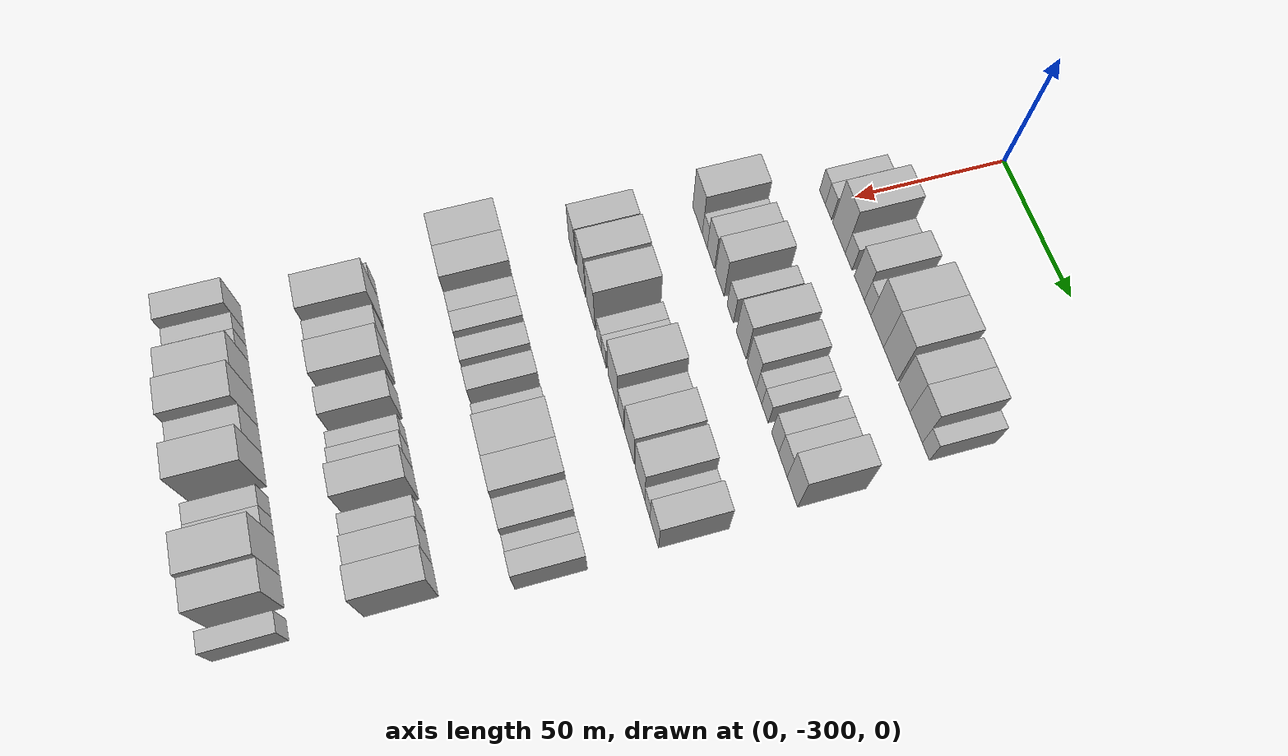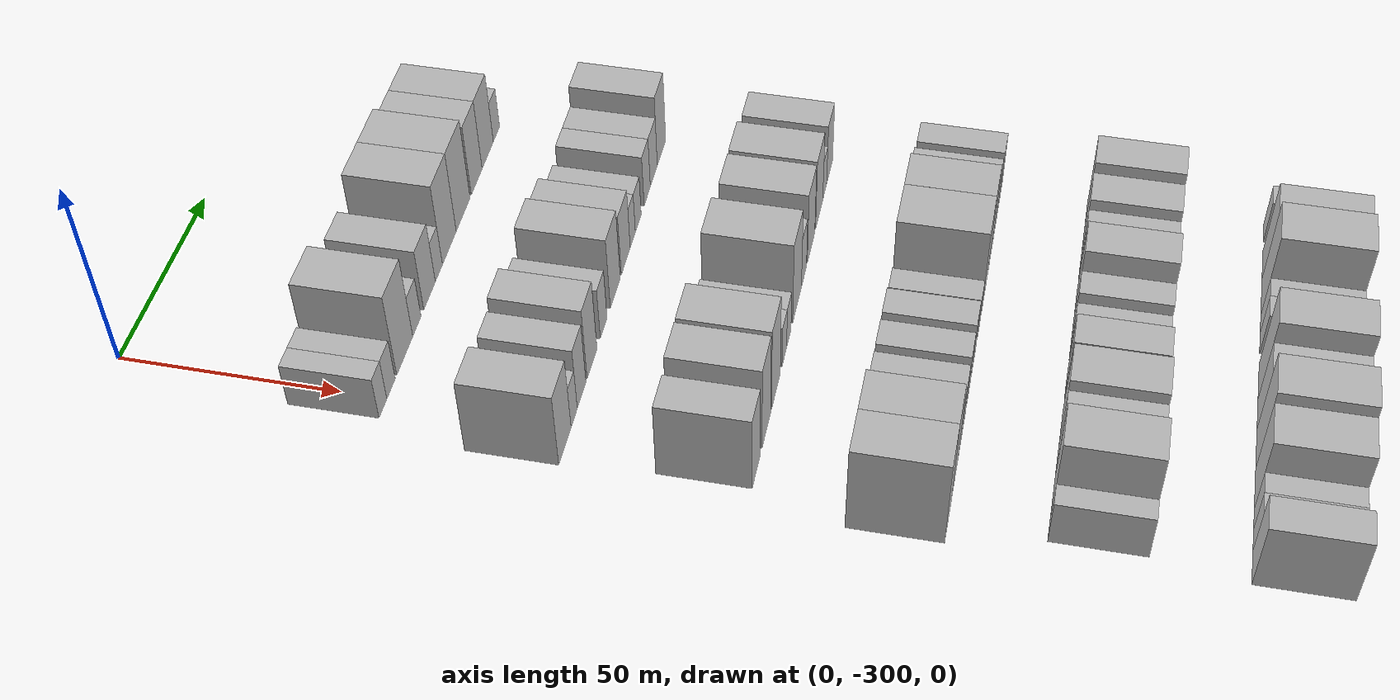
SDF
<sdf version="1.6">
 <world name="default">
  <model name="building_38">
   <static>1</static>
   <pose>50.0000 -302.6083 0 0.000000 0.000000 0.000000</pose>
   <link name="link">
    <pose>0 0 6.00 0 0 0</pose>
    <collision name="collision"><geometry><box><size>20.0000 5.3169 12.0000</size></box></geometry></collision>
    <visual name="visual">
     <cast_shadows>0</cast_shadows>
     <geometry><box><size>20.0000 5.3169 12.0000</size></box></geometry>
     <material>
      <script>
       <uri>model://HANNAS_wall/materials/scripts</uri>
       <uri>model://HANNAS_wall/materials/textures</uri>
       <name>vrc/HANNAS_wall</name>
      </script>
     </material>
    </visual>
   </link>
  </model>
  <model name="building_39">
   <static>1</static>
   <pose>50.0000 -297.0786 0 0.000000 0.000000 0.000000</pose>
   <link name="link">
    <pose>0 0 6.00 0 0 0</pose>
    <collision name="collision"><geometry><box><size>20.0000 5.7423 12.0000</size></box></geometry></collision>
    <visual name="visual">
     <cast_shadows>0</cast_shadows>
     <geometry><box><size>20.0000 5.7423 12.0000</size></box></geometry>
     <material>
      <script>
       <uri>model://HANNAS_wall/materials/scripts</uri>
       <uri>model://HANNAS_wall/materials/textures</uri>
       <name>vrc/HANNAS_wall</name>
      </script>
     </material>
    </visual>
   </link>
  </model>
  <model name="building_40">
   <static>1</static>
   <pose>50.0000 -287.5664 0 0.000000 0.000000 0.000000</pose>
   <link name="link">
    <pose>0 0 12.00 0 0 0</pose>
    <collision name="collision"><geometry><box><size>20.0000 11.2821 24.0000</size></box></geometry></collision>
    <visual name="visual">
     <cast_shadows>0</cast_shadows>
     <geometry><box><size>20.0000 11.2821 24.0000</size></box></geometry>
     <material>
      <script>
       <uri>model://HANNAS_wall/materials/scripts</uri>
       <uri>model://HANNAS_wall/materials/textures</uri>
       <name>vrc/HANNAS_wall</name>
      </script>
     </material>
    </visual>
   </link>
  </model>
  <model name="building_41">
   <static>1</static>
   <pose>50.0000 -278.9384 0 0.000000 0.000000 0.000000</pose>
   <link name="link">
    <pose>0 0 6.00 0 0 0</pose>
    <collision name="collision"><geometry><box><size>20.0000 5.9738 12.0000</size></box></geometry></collision>
    <visual name="visual">
     <cast_shadows>0</cast_shadows>
     <geometry><box><size>20.0000 5.9738 12.0000</size></box></geometry>
     <material>
      <script>
       <uri>model://HANNAS_wall/materials/scripts</uri>
       <uri>model://HANNAS_wall/materials/textures</uri>
       <name>vrc/HANNAS_wall</name>
      </script>
     </material>
    </visual>
   </link>
  </model>
  <model name="building_42">
   <static>1</static>
   <pose>50.0000 -269.6416 0 0.000000 0.000000 0.000000</pose>
   <link name="link">
    <pose>0 0 9.00 0 0 0</pose>
    <collision name="collision"><geometry><box><size>20.0000 8.6198 18.0000</size></box></geometry></collision>
    <visual name="visual">
     <cast_shadows>0</cast_shadows>
     <geometry><box><size>20.0000 8.6198 18.0000</size></box></geometry>
     <material>
      <script>
       <uri>model://HANNAS_wall/materials/scripts</uri>
       <uri>model://HANNAS_wall/materials/textures</uri>
       <name>vrc/HANNAS_wall</name>
      </script>
     </material>
    </visual>
   </link>
  </model>
  <model name="building_43">
   <static>1</static>
   <pose>50.0000 -262.6278 0 0.000000 0.000000 0.000000</pose>
   <link name="link">
    <pose>0 0 6.00 0 0 0</pose>
    <collision name="collision"><geometry><box><size>20.0000 5.4079 12.0000</size></box></geometry></collision>
    <visual name="visual">
     <cast_shadows>0</cast_shadows>
     <geometry><box><size>20.0000 5.4079 12.0000</size></box></geometry>
     <material>
      <script>
       <uri>model://HANNAS_wall/materials/scripts</uri>
       <uri>model://HANNAS_wall/materials/textures</uri>
       <name>vrc/HANNAS_wall</name>
      </script>
     </material>
    </visual>
   </link>
  </model>
  <model name="building_44">
   <static>1</static>
   <pose>50.0000 -254.5875 0 0.000000 0.000000 0.000000</pose>
   <link name="link">
    <pose>0 0 12.00 0 0 0</pose>
    <collision name="collision"><geometry><box><size>20.0000 10.6726 24.0000</size></box></geometry></collision>
    <visual name="visual">
     <cast_shadows>0</cast_shadows>
     <geometry><box><size>20.0000 10.6726 24.0000</size></box></geometry>
     <material>
      <script>
       <uri>model://HANNAS_wall/materials/scripts</uri>
       <uri>model://HANNAS_wall/materials/textures</uri>
       <name>vrc/HANNAS_wall</name>
      </script>
     </material>
    </visual>
   </link>
  </model>
  <model name="building_45">
   <static>1</static>
   <pose>50.0000 -243.7102 0 0.000000 0.000000 0.000000</pose>
   <link name="link">
    <pose>0 0 12.00 0 0 0</pose>
    <collision name="collision"><geometry><box><size>20.0000 11.0819 24.0000</size></box></geometry></collision>
    <visual name="visual">
     <cast_shadows>0</cast_shadows>
     <geometry><box><size>20.0000 11.0819 24.0000</size></box></geometry>
     <material>
      <script>
       <uri>model://HANNAS_wall/materials/scripts</uri>
       <uri>model://HANNAS_wall/materials/textures</uri>
       <name>vrc/HANNAS_wall</name>
      </script>
     </material>
    </visual>
   </link>
  </model>
  <model name="building_46">
   <static>1</static>
   <pose>50.0000 -232.6948 0 0.000000 0.000000 0.000000</pose>
   <link name="link">
    <pose>0 0 10.50 0 0 0</pose>
    <collision name="collision"><geometry><box><size>20.0000 8.9489 21.0000</size></box></geometry></collision>
    <visual name="visual">
     <cast_shadows>0</cast_shadows>
     <geometry><box><size>20.0000 8.9489 21.0000</size></box></geometry>
     <material>
      <script>
       <uri>model://HANNAS_wall/materials/scripts</uri>
       <uri>model://HANNAS_wall/materials/textures</uri>
       <name>vrc/HANNAS_wall</name>
      </script>
     </material>
    </visual>
   </link>
  </model>
  <model name="building_47">
   <static>1</static>
   <pose>50.0000 -223.4624 0 0.000000 0.000000 0.000000</pose>
   <link name="link">
    <pose>0 0 10.50 0 0 0</pose>
    <collision name="collision"><geometry><box><size>20.0000 9.5160 21.0000</size></box></geometry></collision>
    <visual name="visual">
     <cast_shadows>0</cast_shadows>
     <geometry><box><size>20.0000 9.5160 21.0000</size></box></geometry>
     <material>
      <script>
       <uri>model://HANNAS_wall/materials/scripts</uri>
       <uri>model://HANNAS_wall/materials/textures</uri>
       <name>vrc/HANNAS_wall</name>
      </script>
     </material>
    </visual>
   </link>
  </model>
  <model name="building_48">
   <static>1</static>
   <pose>50.0000 -216.0085 0 0.000000 0.000000 0.000000</pose>
   <link name="link">
    <pose>0 0 6.00 0 0 0</pose>
    <collision name="collision"><geometry><box><size>20.0000 5.3917 12.0000</size></box></geometry></collision>
    <visual name="visual">
     <cast_shadows>0</cast_shadows>
     <geometry><box><size>20.0000 5.3917 12.0000</size></box></geometry>
     <material>
      <script>
       <uri>model://HANNAS_wall/materials/scripts</uri>
       <uri>model://HANNAS_wall/materials/textures</uri>
       <name>vrc/HANNAS_wall</name>
      </script>
     </material>
    </visual>
   </link>
  </model>
  <model name="building_171">
   <static>1</static>
   <pose>90.0000 -305.1399 0 0.000000 0.000000 0.000000</pose>
   <link name="link">
    <pose>0 0 10.50 0 0 0</pose>
    <collision name="collision"><geometry><box><size>20.0000 10.1051 21.0000</size></box></geometry></collision>
    <visual name="visual">
     <cast_shadows>0</cast_shadows>
     <geometry><box><size>20.0000 10.1051 21.0000</size></box></geometry>
     <material>
      <script>
       <uri>model://HANNAS_wall/materials/scripts</uri>
       <uri>model://HANNAS_wall/materials/textures</uri>
       <name>vrc/HANNAS_wall</name>
      </script>
     </material>
    </visual>
   </link>
  </model>
  <model name="building_172">
   <static>1</static>
   <pose>90.0000 -297.4842 0 0.000000 0.000000 0.000000</pose>
   <link name="link">
    <pose>0 0 6.00 0 0 0</pose>
    <collision name="collision"><geometry><box><size>20.0000 5.2062 12.0000</size></box></geometry></collision>
    <visual name="visual">
     <cast_shadows>0</cast_shadows>
     <geometry><box><size>20.0000 5.2062 12.0000</size></box></geometry>
     <material>
      <script>
       <uri>model://HANNAS_wall/materials/scripts</uri>
       <uri>model://HANNAS_wall/materials/textures</uri>
       <name>vrc/HANNAS_wall</name>
      </script>
     </material>
    </visual>
   </link>
  </model>
  <model name="building_173">
   <static>1</static>
   <pose>90.0000 -291.1839 0 0.000000 0.000000 0.000000</pose>
   <link name="link">
    <pose>0 0 9.00 0 0 0</pose>
    <collision name="collision"><geometry><box><size>20.0000 7.3945 18.0000</size></box></geometry></collision>
    <visual name="visual">
     <cast_shadows>0</cast_shadows>
     <geometry><box><size>20.0000 7.3945 18.0000</size></box></geometry>
     <material>
      <script>
       <uri>model://HANNAS_wall/materials/scripts</uri>
       <uri>model://HANNAS_wall/materials/textures</uri>
       <name>vrc/HANNAS_wall</name>
      </script>
     </material>
    </visual>
   </link>
  </model>
  <model name="building_174">
   <static>1</static>
   <pose>90.0000 -282.1579 0 0.000000 0.000000 0.000000</pose>
   <link name="link">
    <pose>0 0 10.50 0 0 0</pose>
    <collision name="collision"><geometry><box><size>20.0000 8.6576 21.0000</size></box></geometry></collision>
    <visual name="visual">
     <cast_shadows>0</cast_shadows>
     <geometry><box><size>20.0000 8.6576 21.0000</size></box></geometry>
     <material>
      <script>
       <uri>model://HANNAS_wall/materials/scripts</uri>
       <uri>model://HANNAS_wall/materials/textures</uri>
       <name>vrc/HANNAS_wall</name>
      </script>
     </material>
    </visual>
   </link>
  </model>
  <model name="building_175">
   <static>1</static>
   <pose>90.0000 -271.7665 0 0.000000 0.000000 0.000000</pose>
   <link name="link">
    <pose>0 0 7.50 0 0 0</pose>
    <collision name="collision"><geometry><box><size>20.0000 6.1251 15.0000</size></box></geometry></collision>
    <visual name="visual">
     <cast_shadows>0</cast_shadows>
     <geometry><box><size>20.0000 6.1251 15.0000</size></box></geometry>
     <material>
      <script>
       <uri>model://HANNAS_wall/materials/scripts</uri>
       <uri>model://HANNAS_wall/materials/textures</uri>
       <name>vrc/HANNAS_wall</name>
      </script>
     </material>
    </visual>
   </link>
  </model>
  <model name="building_176">
   <static>1</static>
   <pose>90.0000 -261.0550 0 0.000000 0.000000 0.000000</pose>
   <link name="link">
    <pose>0 0 10.50 0 0 0</pose>
    <collision name="collision"><geometry><box><size>20.0000 9.2980 21.0000</size></box></geometry></collision>
    <visual name="visual">
     <cast_shadows>0</cast_shadows>
     <geometry><box><size>20.0000 9.2980 21.0000</size></box></geometry>
     <material>
      <script>
       <uri>model://HANNAS_wall/materials/scripts</uri>
       <uri>model://HANNAS_wall/materials/textures</uri>
       <name>vrc/HANNAS_wall</name>
      </script>
     </material>
    </visual>
   </link>
  </model>
  <model name="building_177">
   <static>1</static>
   <pose>90.0000 -251.1401 0 0.000000 0.000000 0.000000</pose>
   <link name="link">
    <pose>0 0 9.00 0 0 0</pose>
    <collision name="collision"><geometry><box><size>20.0000 8.5317 18.0000</size></box></geometry></collision>
    <visual name="visual">
     <cast_shadows>0</cast_shadows>
     <geometry><box><size>20.0000 8.5317 18.0000</size></box></geometry>
     <material>
      <script>
       <uri>model://HANNAS_wall/materials/scripts</uri>
       <uri>model://HANNAS_wall/materials/textures</uri>
       <name>vrc/HANNAS_wall</name>
      </script>
     </material>
    </visual>
   </link>
  </model>
  <model name="building_178">
   <static>1</static>
   <pose>90.0000 -244.3397 0 0.000000 0.000000 0.000000</pose>
   <link name="link">
    <pose>0 0 6.00 0 0 0</pose>
    <collision name="collision"><geometry><box><size>20.0000 5.0692 12.0000</size></box></geometry></collision>
    <visual name="visual">
     <cast_shadows>0</cast_shadows>
     <geometry><box><size>20.0000 5.0692 12.0000</size></box></geometry>
     <material>
      <script>
       <uri>model://HANNAS_wall/materials/scripts</uri>
       <uri>model://HANNAS_wall/materials/textures</uri>
       <name>vrc/HANNAS_wall</name>
      </script>
     </material>
    </visual>
   </link>
  </model>
  <model name="building_179">
   <static>1</static>
   <pose>90.0000 -238.8954 0 0.000000 0.000000 0.000000</pose>
   <link name="link">
    <pose>0 0 6.00 0 0 0</pose>
    <collision name="collision"><geometry><box><size>20.0000 5.8195 12.0000</size></box></geometry></collision>
    <visual name="visual">
     <cast_shadows>0</cast_shadows>
     <geometry><box><size>20.0000 5.8195 12.0000</size></box></geometry>
     <material>
      <script>
       <uri>model://HANNAS_wall/materials/scripts</uri>
       <uri>model://HANNAS_wall/materials/textures</uri>
       <name>vrc/HANNAS_wall</name>
      </script>
     </material>
    </visual>
   </link>
  </model>
  <model name="building_180">
   <static>1</static>
   <pose>90.0000 -229.8016 0 0.000000 0.000000 0.000000</pose>
   <link name="link">
    <pose>0 0 7.50 0 0 0</pose>
    <collision name="collision"><geometry><box><size>20.0000 6.3681 15.0000</size></box></geometry></collision>
    <visual name="visual">
     <cast_shadows>0</cast_shadows>
     <geometry><box><size>20.0000 6.3681 15.0000</size></box></geometry>
     <material>
      <script>
       <uri>model://HANNAS_wall/materials/scripts</uri>
       <uri>model://HANNAS_wall/materials/textures</uri>
       <name>vrc/HANNAS_wall</name>
      </script>
     </material>
    </visual>
   </link>
  </model>
  <model name="building_181">
   <static>1</static>
   <pose>90.0000 -222.9694 0 0.000000 0.000000 0.000000</pose>
   <link name="link">
    <pose>0 0 7.50 0 0 0</pose>
    <collision name="collision"><geometry><box><size>20.0000 7.2964 15.0000</size></box></geometry></collision>
    <visual name="visual">
     <cast_shadows>0</cast_shadows>
     <geometry><box><size>20.0000 7.2964 15.0000</size></box></geometry>
     <material>
      <script>
       <uri>model://HANNAS_wall/materials/scripts</uri>
       <uri>model://HANNAS_wall/materials/textures</uri>
       <name>vrc/HANNAS_wall</name>
      </script>
     </material>
    </visual>
   </link>
  </model>
  <model name="building_182">
   <static>1</static>
   <pose>90.0000 -214.8650 0 0.000000 0.000000 0.000000</pose>
   <link name="link">
    <pose>0 0 10.50 0 0 0</pose>
    <collision name="collision"><geometry><box><size>20.0000 8.9125 21.0000</size></box></geometry></collision>
    <visual name="visual">
     <cast_shadows>0</cast_shadows>
     <geometry><box><size>20.0000 8.9125 21.0000</size></box></geometry>
     <material>
      <script>
       <uri>model://HANNAS_wall/materials/scripts</uri>
       <uri>model://HANNAS_wall/materials/textures</uri>
       <name>vrc/HANNAS_wall</name>
      </script>
     </material>
    </visual>
   </link>
  </model>
  <model name="building_304">
   <static>1</static>
   <pose>130.0000 -304.2901 0 0.000000 0.000000 0.000000</pose>
   <link name="link">
    <pose>0 0 10.50 0 0 0</pose>
    <collision name="collision"><geometry><box><size>20.0000 8.6374 21.0000</size></box></geometry></collision>
    <visual name="visual">
     <cast_shadows>0</cast_shadows>
     <geometry><box><size>20.0000 8.6374 21.0000</size></box></geometry>
     <material>
      <script>
       <uri>model://HANNAS_wall/materials/scripts</uri>
       <uri>model://HANNAS_wall/materials/textures</uri>
       <name>vrc/HANNAS_wall</name>
      </script>
     </material>
    </visual>
   </link>
  </model>
  <model name="building_305">
   <static>1</static>
   <pose>130.0000 -293.1540 0 0.000000 0.000000 0.000000</pose>
   <link name="link">
    <pose>0 0 12.00 0 0 0</pose>
    <collision name="collision"><geometry><box><size>20.0000 9.6349 24.0000</size></box></geometry></collision>
    <visual name="visual">
     <cast_shadows>0</cast_shadows>
     <geometry><box><size>20.0000 9.6349 24.0000</size></box></geometry>
     <material>
      <script>
       <uri>model://HANNAS_wall/materials/scripts</uri>
       <uri>model://HANNAS_wall/materials/textures</uri>
       <name>vrc/HANNAS_wall</name>
      </script>
     </material>
    </visual>
   </link>
  </model>
  <model name="building_306">
   <static>1</static>
   <pose>130.0000 -282.2985 0 0.000000 0.000000 0.000000</pose>
   <link name="link">
    <pose>0 0 12.00 0 0 0</pose>
    <collision name="collision"><geometry><box><size>20.0000 10.0761 24.0000</size></box></geometry></collision>
    <visual name="visual">
     <cast_shadows>0</cast_shadows>
     <geometry><box><size>20.0000 10.0761 24.0000</size></box></geometry>
     <material>
      <script>
       <uri>model://HANNAS_wall/materials/scripts</uri>
       <uri>model://HANNAS_wall/materials/textures</uri>
       <name>vrc/HANNAS_wall</name>
      </script>
     </material>
    </visual>
   </link>
  </model>
  <model name="building_307">
   <static>1</static>
   <pose>130.0000 -272.4788 0 0.000000 0.000000 0.000000</pose>
   <link name="link">
    <pose>0 0 6.00 0 0 0</pose>
    <collision name="collision"><geometry><box><size>20.0000 5.5634 12.0000</size></box></geometry></collision>
    <visual name="visual">
     <cast_shadows>0</cast_shadows>
     <geometry><box><size>20.0000 5.5634 12.0000</size></box></geometry>
     <material>
      <script>
       <uri>model://HANNAS_wall/materials/scripts</uri>
       <uri>model://HANNAS_wall/materials/textures</uri>
       <name>vrc/HANNAS_wall</name>
      </script>
     </material>
    </visual>
   </link>
  </model>
  <model name="building_308">
   <static>1</static>
   <pose>130.0000 -267.0970 0 0.000000 0.000000 0.000000</pose>
   <link name="link">
    <pose>0 0 6.00 0 0 0</pose>
    <collision name="collision"><geometry><box><size>20.0000 5.2002 12.0000</size></box></geometry></collision>
    <visual name="visual">
     <cast_shadows>0</cast_shadows>
     <geometry><box><size>20.0000 5.2002 12.0000</size></box></geometry>
     <material>
      <script>
       <uri>model://HANNAS_wall/materials/scripts</uri>
       <uri>model://HANNAS_wall/materials/textures</uri>
       <name>vrc/HANNAS_wall</name>
      </script>
     </material>
    </visual>
   </link>
  </model>
  <model name="building_309">
   <static>1</static>
   <pose>130.0000 -257.0228 0 0.000000 0.000000 0.000000</pose>
   <link name="link">
    <pose>0 0 12.00 0 0 0</pose>
    <collision name="collision"><geometry><box><size>20.0000 10.9484 24.0000</size></box></geometry></collision>
    <visual name="visual">
     <cast_shadows>0</cast_shadows>
     <geometry><box><size>20.0000 10.9484 24.0000</size></box></geometry>
     <material>
      <script>
       <uri>model://HANNAS_wall/materials/scripts</uri>
       <uri>model://HANNAS_wall/materials/textures</uri>
       <name>vrc/HANNAS_wall</name>
      </script>
     </material>
    </visual>
   </link>
  </model>
  <model name="building_310">
   <static>1</static>
   <pose>130.0000 -248.2915 0 0.000000 0.000000 0.000000</pose>
   <link name="link">
    <pose>0 0 7.50 0 0 0</pose>
    <collision name="collision"><geometry><box><size>20.0000 6.5141 15.0000</size></box></geometry></collision>
    <visual name="visual">
     <cast_shadows>0</cast_shadows>
     <geometry><box><size>20.0000 6.5141 15.0000</size></box></geometry>
     <material>
      <script>
       <uri>model://HANNAS_wall/materials/scripts</uri>
       <uri>model://HANNAS_wall/materials/textures</uri>
       <name>vrc/HANNAS_wall</name>
      </script>
     </material>
    </visual>
   </link>
  </model>
  <model name="building_311">
   <static>1</static>
   <pose>130.0000 -239.1155 0 0.000000 0.000000 0.000000</pose>
   <link name="link">
    <pose>0 0 10.50 0 0 0</pose>
    <collision name="collision"><geometry><box><size>20.0000 9.8379 21.0000</size></box></geometry></collision>
    <visual name="visual">
     <cast_shadows>0</cast_shadows>
     <geometry><box><size>20.0000 9.8379 21.0000</size></box></geometry>
     <material>
      <script>
       <uri>model://HANNAS_wall/materials/scripts</uri>
       <uri>model://HANNAS_wall/materials/textures</uri>
       <name>vrc/HANNAS_wall</name>
      </script>
     </material>
    </visual>
   </link>
  </model>
  <model name="building_312">
   <static>1</static>
   <pose>130.0000 -228.3237 0 0.000000 0.000000 0.000000</pose>
   <link name="link">
    <pose>0 0 10.50 0 0 0</pose>
    <collision name="collision"><geometry><box><size>20.0000 9.7458 21.0000</size></box></geometry></collision>
    <visual name="visual">
     <cast_shadows>0</cast_shadows>
     <geometry><box><size>20.0000 9.7458 21.0000</size></box></geometry>
     <material>
      <script>
       <uri>model://HANNAS_wall/materials/scripts</uri>
       <uri>model://HANNAS_wall/materials/textures</uri>
       <name>vrc/HANNAS_wall</name>
      </script>
     </material>
    </visual>
   </link>
  </model>
  <model name="building_313">
   <static>1</static>
   <pose>130.0000 -220.7947 0 0.000000 0.000000 0.000000</pose>
   <link name="link">
    <pose>0 0 6.00 0 0 0</pose>
    <collision name="collision"><geometry><box><size>20.0000 5.3123 12.0000</size></box></geometry></collision>
    <visual name="visual">
     <cast_shadows>0</cast_shadows>
     <geometry><box><size>20.0000 5.3123 12.0000</size></box></geometry>
     <material>
      <script>
       <uri>model://HANNAS_wall/materials/scripts</uri>
       <uri>model://HANNAS_wall/materials/textures</uri>
       <name>vrc/HANNAS_wall</name>
      </script>
     </material>
    </visual>
   </link>
  </model>
  <model name="building_314">
   <static>1</static>
   <pose>130.0000 -213.9152 0 0.000000 0.000000 0.000000</pose>
   <link name="link">
    <pose>0 0 9.00 0 0 0</pose>
    <collision name="collision"><geometry><box><size>20.0000 8.4467 18.0000</size></box></geometry></collision>
    <visual name="visual">
     <cast_shadows>0</cast_shadows>
     <geometry><box><size>20.0000 8.4467 18.0000</size></box></geometry>
     <material>
      <script>
       <uri>model://HANNAS_wall/materials/scripts</uri>
       <uri>model://HANNAS_wall/materials/textures</uri>
       <name>vrc/HANNAS_wall</name>
      </script>
     </material>
    </visual>
   </link>
  </model>
  <model name="building_448">
   <static>1</static>
   <pose>170.0000 -309.2183 0 0.000000 0.000000 0.000000</pose>
   <link name="link">
    <pose>0 0 12.00 0 0 0</pose>
    <collision name="collision"><geometry><box><size>20.0000 10.9317 24.0000</size></box></geometry></collision>
    <visual name="visual">
     <cast_shadows>0</cast_shadows>
     <geometry><box><size>20.0000 10.9317 24.0000</size></box></geometry>
     <material>
      <script>
       <uri>model://HANNAS_wall/materials/scripts</uri>
       <uri>model://HANNAS_wall/materials/textures</uri>
       <name>vrc/HANNAS_wall</name>
      </script>
     </material>
    </visual>
   </link>
  </model>
  <model name="building_449">
   <static>1</static>
   <pose>170.0000 -298.6011 0 0.000000 0.000000 0.000000</pose>
   <link name="link">
    <pose>0 0 12.00 0 0 0</pose>
    <collision name="collision"><geometry><box><size>20.0000 10.3028 24.0000</size></box></geometry></collision>
    <visual name="visual">
     <cast_shadows>0</cast_shadows>
     <geometry><box><size>20.0000 10.3028 24.0000</size></box></geometry>
     <material>
      <script>
       <uri>model://HANNAS_wall/materials/scripts</uri>
       <uri>model://HANNAS_wall/materials/textures</uri>
       <name>vrc/HANNAS_wall</name>
      </script>
     </material>
    </visual>
   </link>
  </model>
  <model name="building_450">
   <static>1</static>
   <pose>170.0000 -290.1922 0 0.000000 0.000000 0.000000</pose>
   <link name="link">
    <pose>0 0 7.50 0 0 0</pose>
    <collision name="collision"><geometry><box><size>20.0000 6.5150 15.0000</size></box></geometry></collision>
    <visual name="visual">
     <cast_shadows>0</cast_shadows>
     <geometry><box><size>20.0000 6.5150 15.0000</size></box></geometry>
     <material>
      <script>
       <uri>model://HANNAS_wall/materials/scripts</uri>
       <uri>model://HANNAS_wall/materials/textures</uri>
       <name>vrc/HANNAS_wall</name>
      </script>
     </material>
    </visual>
   </link>
  </model>
  <model name="building_451">
   <static>1</static>
   <pose>170.0000 -283.6567 0 0.000000 0.000000 0.000000</pose>
   <link name="link">
    <pose>0 0 7.50 0 0 0</pose>
    <collision name="collision"><geometry><box><size>20.0000 6.5560 15.0000</size></box></geometry></collision>
    <visual name="visual">
     <cast_shadows>0</cast_shadows>
     <geometry><box><size>20.0000 6.5560 15.0000</size></box></geometry>
     <material>
      <script>
       <uri>model://HANNAS_wall/materials/scripts</uri>
       <uri>model://HANNAS_wall/materials/textures</uri>
       <name>vrc/HANNAS_wall</name>
      </script>
     </material>
    </visual>
   </link>
  </model>
  <model name="building_452">
   <static>1</static>
   <pose>170.0000 -274.8440 0 0.000000 0.000000 0.000000</pose>
   <link name="link">
    <pose>0 0 7.50 0 0 0</pose>
    <collision name="collision"><geometry><box><size>20.0000 7.0694 15.0000</size></box></geometry></collision>
    <visual name="visual">
     <cast_shadows>0</cast_shadows>
     <geometry><box><size>20.0000 7.0694 15.0000</size></box></geometry>
     <material>
      <script>
       <uri>model://HANNAS_wall/materials/scripts</uri>
       <uri>model://HANNAS_wall/materials/textures</uri>
       <name>vrc/HANNAS_wall</name>
      </script>
     </material>
    </visual>
   </link>
  </model>
  <model name="building_453">
   <static>1</static>
   <pose>170.0000 -265.7483 0 0.000000 0.000000 0.000000</pose>
   <link name="link">
    <pose>0 0 7.50 0 0 0</pose>
    <collision name="collision"><geometry><box><size>20.0000 7.1220 15.0000</size></box></geometry></collision>
    <visual name="visual">
     <cast_shadows>0</cast_shadows>
     <geometry><box><size>20.0000 7.1220 15.0000</size></box></geometry>
     <material>
      <script>
       <uri>model://HANNAS_wall/materials/scripts</uri>
       <uri>model://HANNAS_wall/materials/textures</uri>
       <name>vrc/HANNAS_wall</name>
      </script>
     </material>
    </visual>
   </link>
  </model>
  <model name="building_454">
   <static>1</static>
   <pose>170.0000 -256.2339 0 0.000000 0.000000 0.000000</pose>
   <link name="link">
    <pose>0 0 6.00 0 0 0</pose>
    <collision name="collision"><geometry><box><size>20.0000 5.9067 12.0000</size></box></geometry></collision>
    <visual name="visual">
     <cast_shadows>0</cast_shadows>
     <geometry><box><size>20.0000 5.9067 12.0000</size></box></geometry>
     <material>
      <script>
       <uri>model://HANNAS_wall/materials/scripts</uri>
       <uri>model://HANNAS_wall/materials/textures</uri>
       <name>vrc/HANNAS_wall</name>
      </script>
     </material>
    </visual>
   </link>
  </model>
  <model name="building_455">
   <static>1</static>
   <pose>170.0000 -245.3969 0 0.000000 0.000000 0.000000</pose>
   <link name="link">
    <pose>0 0 12.00 0 0 0</pose>
    <collision name="collision"><geometry><box><size>20.0000 11.7675 24.0000</size></box></geometry></collision>
    <visual name="visual">
     <cast_shadows>0</cast_shadows>
     <geometry><box><size>20.0000 11.7675 24.0000</size></box></geometry>
     <material>
      <script>
       <uri>model://HANNAS_wall/materials/scripts</uri>
       <uri>model://HANNAS_wall/materials/textures</uri>
       <name>vrc/HANNAS_wall</name>
      </script>
     </material>
    </visual>
   </link>
  </model>
  <model name="building_456">
   <static>1</static>
   <pose>170.0000 -234.5562 0 0.000000 0.000000 0.000000</pose>
   <link name="link">
    <pose>0 0 12.00 0 0 0</pose>
    <collision name="collision"><geometry><box><size>20.0000 9.9138 24.0000</size></box></geometry></collision>
    <visual name="visual">
     <cast_shadows>0</cast_shadows>
     <geometry><box><size>20.0000 9.9138 24.0000</size></box></geometry>
     <material>
      <script>
       <uri>model://HANNAS_wall/materials/scripts</uri>
       <uri>model://HANNAS_wall/materials/textures</uri>
       <name>vrc/HANNAS_wall</name>
      </script>
     </material>
    </visual>
   </link>
  </model>
  <model name="building_457">
   <static>1</static>
   <pose>170.0000 -225.3535 0 0.000000 0.000000 0.000000</pose>
   <link name="link">
    <pose>0 0 9.00 0 0 0</pose>
    <collision name="collision"><geometry><box><size>20.0000 8.4916 18.0000</size></box></geometry></collision>
    <visual name="visual">
     <cast_shadows>0</cast_shadows>
     <geometry><box><size>20.0000 8.4916 18.0000</size></box></geometry>
     <material>
      <script>
       <uri>model://HANNAS_wall/materials/scripts</uri>
       <uri>model://HANNAS_wall/materials/textures</uri>
       <name>vrc/HANNAS_wall</name>
      </script>
     </material>
    </visual>
   </link>
  </model>
  <model name="building_458">
   <static>1</static>
   <pose>170.0000 -218.4693 0 0.000000 0.000000 0.000000</pose>
   <link name="link">
    <pose>0 0 6.00 0 0 0</pose>
    <collision name="collision"><geometry><box><size>20.0000 5.2768 12.0000</size></box></geometry></collision>
    <visual name="visual">
     <cast_shadows>0</cast_shadows>
     <geometry><box><size>20.0000 5.2768 12.0000</size></box></geometry>
     <material>
      <script>
       <uri>model://HANNAS_wall/materials/scripts</uri>
       <uri>model://HANNAS_wall/materials/textures</uri>
       <name>vrc/HANNAS_wall</name>
      </script>
     </material>
    </visual>
   </link>
  </model>
  <model name="building_459">
   <static>1</static>
   <pose>170.0000 -212.4684 0 0.000000 0.000000 0.000000</pose>
   <link name="link">
    <pose>0 0 7.50 0 0 0</pose>
    <collision name="collision"><geometry><box><size>20.0000 6.7251 15.0000</size></box></geometry></collision>
    <visual name="visual">
     <cast_shadows>0</cast_shadows>
     <geometry><box><size>20.0000 6.7251 15.0000</size></box></geometry>
     <material>
      <script>
       <uri>model://HANNAS_wall/materials/scripts</uri>
       <uri>model://HANNAS_wall/materials/textures</uri>
       <name>vrc/HANNAS_wall</name>
      </script>
     </material>
    </visual>
   </link>
  </model>
  <model name="building_584">
   <static>1</static>
   <pose>210.0000 -307.8533 0 0.000000 0.000000 0.000000</pose>
   <link name="link">
    <pose>0 0 6.00 0 0 0</pose>
    <collision name="collision"><geometry><box><size>20.0000 5.1131 12.0000</size></box></geometry></collision>
    <visual name="visual">
     <cast_shadows>0</cast_shadows>
     <geometry><box><size>20.0000 5.1131 12.0000</size></box></geometry>
     <material>
      <script>
       <uri>model://HANNAS_wall/materials/scripts</uri>
       <uri>model://HANNAS_wall/materials/textures</uri>
       <name>vrc/HANNAS_wall</name>
      </script>
     </material>
    </visual>
   </link>
  </model>
  <model name="building_585">
   <static>1</static>
   <pose>210.0000 -299.8948 0 0.000000 0.000000 0.000000</pose>
   <link name="link">
    <pose>0 0 12.00 0 0 0</pose>
    <collision name="collision"><geometry><box><size>20.0000 10.8039 24.0000</size></box></geometry></collision>
    <visual name="visual">
     <cast_shadows>0</cast_shadows>
     <geometry><box><size>20.0000 10.8039 24.0000</size></box></geometry>
     <material>
      <script>
       <uri>model://HANNAS_wall/materials/scripts</uri>
       <uri>model://HANNAS_wall/materials/textures</uri>
       <name>vrc/HANNAS_wall</name>
      </script>
     </material>
    </visual>
   </link>
  </model>
  <model name="building_586">
   <static>1</static>
   <pose>210.0000 -289.7125 0 0.000000 0.000000 0.000000</pose>
   <link name="link">
    <pose>0 0 9.00 0 0 0</pose>
    <collision name="collision"><geometry><box><size>20.0000 7.5607 18.0000</size></box></geometry></collision>
    <visual name="visual">
     <cast_shadows>0</cast_shadows>
     <geometry><box><size>20.0000 7.5607 18.0000</size></box></geometry>
     <material>
      <script>
       <uri>model://HANNAS_wall/materials/scripts</uri>
       <uri>model://HANNAS_wall/materials/textures</uri>
       <name>vrc/HANNAS_wall</name>
      </script>
     </material>
    </visual>
   </link>
  </model>
  <model name="building_587">
   <static>1</static>
   <pose>210.0000 -280.8979 0 0.000000 0.000000 0.000000</pose>
   <link name="link">
    <pose>0 0 10.50 0 0 0</pose>
    <collision name="collision"><geometry><box><size>20.0000 10.0685 21.0000</size></box></geometry></collision>
    <visual name="visual">
     <cast_shadows>0</cast_shadows>
     <geometry><box><size>20.0000 10.0685 21.0000</size></box></geometry>
     <material>
      <script>
       <uri>model://HANNAS_wall/materials/scripts</uri>
       <uri>model://HANNAS_wall/materials/textures</uri>
       <name>vrc/HANNAS_wall</name>
      </script>
     </material>
    </visual>
   </link>
  </model>
  <model name="building_588">
   <static>1</static>
   <pose>210.0000 -268.8154 0 0.000000 0.000000 0.000000</pose>
   <link name="link">
    <pose>0 0 9.00 0 0 0</pose>
    <collision name="collision"><geometry><box><size>20.0000 8.0966 18.0000</size></box></geometry></collision>
    <visual name="visual">
     <cast_shadows>0</cast_shadows>
     <geometry><box><size>20.0000 8.0966 18.0000</size></box></geometry>
     <material>
      <script>
       <uri>model://HANNAS_wall/materials/scripts</uri>
       <uri>model://HANNAS_wall/materials/textures</uri>
       <name>vrc/HANNAS_wall</name>
      </script>
     </material>
    </visual>
   </link>
  </model>
  <model name="building_589">
   <static>1</static>
   <pose>210.0000 -258.8395 0 0.000000 0.000000 0.000000</pose>
   <link name="link">
    <pose>0 0 6.00 0 0 0</pose>
    <collision name="collision"><geometry><box><size>20.0000 5.8552 12.0000</size></box></geometry></collision>
    <visual name="visual">
     <cast_shadows>0</cast_shadows>
     <geometry><box><size>20.0000 5.8552 12.0000</size></box></geometry>
     <material>
      <script>
       <uri>model://HANNAS_wall/materials/scripts</uri>
       <uri>model://HANNAS_wall/materials/textures</uri>
       <name>vrc/HANNAS_wall</name>
      </script>
     </material>
    </visual>
   </link>
  </model>
  <model name="building_590">
   <static>1</static>
   <pose>210.0000 -252.6185 0 0.000000 0.000000 0.000000</pose>
   <link name="link">
    <pose>0 0 7.50 0 0 0</pose>
    <collision name="collision"><geometry><box><size>20.0000 6.5869 15.0000</size></box></geometry></collision>
    <visual name="visual">
     <cast_shadows>0</cast_shadows>
     <geometry><box><size>20.0000 6.5869 15.0000</size></box></geometry>
     <material>
      <script>
       <uri>model://HANNAS_wall/materials/scripts</uri>
       <uri>model://HANNAS_wall/materials/textures</uri>
       <name>vrc/HANNAS_wall</name>
      </script>
     </material>
    </visual>
   </link>
  </model>
  <model name="building_591">
   <static>1</static>
   <pose>210.0000 -244.7662 0 0.000000 0.000000 0.000000</pose>
   <link name="link">
    <pose>0 0 10.50 0 0 0</pose>
    <collision name="collision"><geometry><box><size>20.0000 9.1177 21.0000</size></box></geometry></collision>
    <visual name="visual">
     <cast_shadows>0</cast_shadows>
     <geometry><box><size>20.0000 9.1177 21.0000</size></box></geometry>
     <material>
      <script>
       <uri>model://HANNAS_wall/materials/scripts</uri>
       <uri>model://HANNAS_wall/materials/textures</uri>
       <name>vrc/HANNAS_wall</name>
      </script>
     </material>
    </visual>
   </link>
  </model>
  <model name="building_592">
   <static>1</static>
   <pose>210.0000 -233.8030 0 0.000000 0.000000 0.000000</pose>
   <link name="link">
    <pose>0 0 7.50 0 0 0</pose>
    <collision name="collision"><geometry><box><size>20.0000 6.8086 15.0000</size></box></geometry></collision>
    <visual name="visual">
     <cast_shadows>0</cast_shadows>
     <geometry><box><size>20.0000 6.8086 15.0000</size></box></geometry>
     <material>
      <script>
       <uri>model://HANNAS_wall/materials/scripts</uri>
       <uri>model://HANNAS_wall/materials/textures</uri>
       <name>vrc/HANNAS_wall</name>
      </script>
     </material>
    </visual>
   </link>
  </model>
  <model name="building_593">
   <static>1</static>
   <pose>210.0000 -226.0486 0 0.000000 0.000000 0.000000</pose>
   <link name="link">
    <pose>0 0 9.00 0 0 0</pose>
    <collision name="collision"><geometry><box><size>20.0000 8.7003 18.0000</size></box></geometry></collision>
    <visual name="visual">
     <cast_shadows>0</cast_shadows>
     <geometry><box><size>20.0000 8.7003 18.0000</size></box></geometry>
     <material>
      <script>
       <uri>model://HANNAS_wall/materials/scripts</uri>
       <uri>model://HANNAS_wall/materials/textures</uri>
       <name>vrc/HANNAS_wall</name>
      </script>
     </material>
    </visual>
   </link>
  </model>
  <model name="building_594">
   <static>1</static>
   <pose>210.0000 -217.1658 0 0.000000 0.000000 0.000000</pose>
   <link name="link">
    <pose>0 0 10.50 0 0 0</pose>
    <collision name="collision"><geometry><box><size>20.0000 9.0651 21.0000</size></box></geometry></collision>
    <visual name="visual">
     <cast_shadows>0</cast_shadows>
     <geometry><box><size>20.0000 9.0651 21.0000</size></box></geometry>
     <material>
      <script>
       <uri>model://HANNAS_wall/materials/scripts</uri>
       <uri>model://HANNAS_wall/materials/textures</uri>
       <name>vrc/HANNAS_wall</name>
      </script>
     </material>
    </visual>
   </link>
  </model>
  <model name="building_719">
   <static>1</static>
   <pose>250.0000 -309.0909 0 0.000000 0.000000 0.000000</pose>
   <link name="link">
    <pose>0 0 9.00 0 0 0</pose>
    <collision name="collision"><geometry><box><size>20.0000 8.2043 18.0000</size></box></geometry></collision>
    <visual name="visual">
     <cast_shadows>0</cast_shadows>
     <geometry><box><size>20.0000 8.2043 18.0000</size></box></geometry>
     <material>
      <script>
       <uri>model://HANNAS_wall/materials/scripts</uri>
       <uri>model://HANNAS_wall/materials/textures</uri>
       <name>vrc/HANNAS_wall</name>
      </script>
     </material>
    </visual>
   </link>
  </model>
  <model name="building_720">
   <static>1</static>
   <pose>250.0000 -302.2991 0 0.000000 0.000000 0.000000</pose>
   <link name="link">
    <pose>0 0 6.00 0 0 0</pose>
    <collision name="collision"><geometry><box><size>20.0000 5.3791 12.0000</size></box></geometry></collision>
    <visual name="visual">
     <cast_shadows>0</cast_shadows>
     <geometry><box><size>20.0000 5.3791 12.0000</size></box></geometry>
     <material>
      <script>
       <uri>model://HANNAS_wall/materials/scripts</uri>
       <uri>model://HANNAS_wall/materials/textures</uri>
       <name>vrc/HANNAS_wall</name>
      </script>
     </material>
    </visual>
   </link>
  </model>
  <model name="building_721">
   <static>1</static>
   <pose>250.0000 -297.0762 0 0.000000 0.000000 0.000000</pose>
   <link name="link">
    <pose>0 0 6.00 0 0 0</pose>
    <collision name="collision"><geometry><box><size>20.0000 5.0667 12.0000</size></box></geometry></collision>
    <visual name="visual">
     <cast_shadows>0</cast_shadows>
     <geometry><box><size>20.0000 5.0667 12.0000</size></box></geometry>
     <material>
      <script>
       <uri>model://HANNAS_wall/materials/scripts</uri>
       <uri>model://HANNAS_wall/materials/textures</uri>
       <name>vrc/HANNAS_wall</name>
      </script>
     </material>
    </visual>
   </link>
  </model>
  <model name="building_722">
   <static>1</static>
   <pose>250.0000 -289.3310 0 0.000000 0.000000 0.000000</pose>
   <link name="link">
    <pose>0 0 10.50 0 0 0</pose>
    <collision name="collision"><geometry><box><size>20.0000 10.4238 21.0000</size></box></geometry></collision>
    <visual name="visual">
     <cast_shadows>0</cast_shadows>
     <geometry><box><size>20.0000 10.4238 21.0000</size></box></geometry>
     <material>
      <script>
       <uri>model://HANNAS_wall/materials/scripts</uri>
       <uri>model://HANNAS_wall/materials/textures</uri>
       <name>vrc/HANNAS_wall</name>
      </script>
     </material>
    </visual>
   </link>
  </model>
  <model name="building_723">
   <static>1</static>
   <pose>250.0000 -278.8019 0 0.000000 0.000000 0.000000</pose>
   <link name="link">
    <pose>0 0 12.00 0 0 0</pose>
    <collision name="collision"><geometry><box><size>20.0000 10.6343 24.0000</size></box></geometry></collision>
    <visual name="visual">
     <cast_shadows>0</cast_shadows>
     <geometry><box><size>20.0000 10.6343 24.0000</size></box></geometry>
     <material>
      <script>
       <uri>model://HANNAS_wall/materials/scripts</uri>
       <uri>model://HANNAS_wall/materials/textures</uri>
       <name>vrc/HANNAS_wall</name>
      </script>
     </material>
    </visual>
   </link>
  </model>
  <model name="building_724">
   <static>1</static>
   <pose>250.0000 -269.3218 0 0.000000 0.000000 0.000000</pose>
   <link name="link">
    <pose>0 0 9.00 0 0 0</pose>
    <collision name="collision"><geometry><box><size>20.0000 8.3259 18.0000</size></box></geometry></collision>
    <visual name="visual">
     <cast_shadows>0</cast_shadows>
     <geometry><box><size>20.0000 8.3259 18.0000</size></box></geometry>
     <material>
      <script>
       <uri>model://HANNAS_wall/materials/scripts</uri>
       <uri>model://HANNAS_wall/materials/textures</uri>
       <name>vrc/HANNAS_wall</name>
      </script>
     </material>
    </visual>
   </link>
  </model>
  <model name="building_725">
   <static>1</static>
   <pose>250.0000 -260.1064 0 0.000000 0.000000 0.000000</pose>
   <link name="link">
    <pose>0 0 12.00 0 0 0</pose>
    <collision name="collision"><geometry><box><size>20.0000 10.1048 24.0000</size></box></geometry></collision>
    <visual name="visual">
     <cast_shadows>0</cast_shadows>
     <geometry><box><size>20.0000 10.1048 24.0000</size></box></geometry>
     <material>
      <script>
       <uri>model://HANNAS_wall/materials/scripts</uri>
       <uri>model://HANNAS_wall/materials/textures</uri>
       <name>vrc/HANNAS_wall</name>
      </script>
     </material>
    </visual>
   </link>
  </model>
  <model name="building_726">
   <static>1</static>
   <pose>250.0000 -249.0722 0 0.000000 0.000000 0.000000</pose>
   <link name="link">
    <pose>0 0 6.00 0 0 0</pose>
    <collision name="collision"><geometry><box><size>20.0000 5.9637 12.0000</size></box></geometry></collision>
    <visual name="visual">
     <cast_shadows>0</cast_shadows>
     <geometry><box><size>20.0000 5.9637 12.0000</size></box></geometry>
     <material>
      <script>
       <uri>model://HANNAS_wall/materials/scripts</uri>
       <uri>model://HANNAS_wall/materials/textures</uri>
       <name>vrc/HANNAS_wall</name>
      </script>
     </material>
    </visual>
   </link>
  </model>
  <model name="building_727">
   <static>1</static>
   <pose>250.0000 -243.4493 0 0.000000 0.000000 0.000000</pose>
   <link name="link">
    <pose>0 0 6.00 0 0 0</pose>
    <collision name="collision"><geometry><box><size>20.0000 5.2820 12.0000</size></box></geometry></collision>
    <visual name="visual">
     <cast_shadows>0</cast_shadows>
     <geometry><box><size>20.0000 5.2820 12.0000</size></box></geometry>
     <material>
      <script>
       <uri>model://HANNAS_wall/materials/scripts</uri>
       <uri>model://HANNAS_wall/materials/textures</uri>
       <name>vrc/HANNAS_wall</name>
      </script>
     </material>
    </visual>
   </link>
  </model>
  <model name="building_728">
   <static>1</static>
   <pose>250.0000 -235.1950 0 0.000000 0.000000 0.000000</pose>
   <link name="link">
    <pose>0 0 12.00 0 0 0</pose>
    <collision name="collision"><geometry><box><size>20.0000 11.2267 24.0000</size></box></geometry></collision>
    <visual name="visual">
     <cast_shadows>0</cast_shadows>
     <geometry><box><size>20.0000 11.2267 24.0000</size></box></geometry>
     <material>
      <script>
       <uri>model://HANNAS_wall/materials/scripts</uri>
       <uri>model://HANNAS_wall/materials/textures</uri>
       <name>vrc/HANNAS_wall</name>
      </script>
     </material>
    </visual>
   </link>
  </model>
  <model name="building_729">
   <static>1</static>
   <pose>250.0000 -225.1012 0 0.000000 0.000000 0.000000</pose>
   <link name="link">
    <pose>0 0 10.50 0 0 0</pose>
    <collision name="collision"><geometry><box><size>20.0000 8.9609 21.0000</size></box></geometry></collision>
    <visual name="visual">
     <cast_shadows>0</cast_shadows>
     <geometry><box><size>20.0000 8.9609 21.0000</size></box></geometry>
     <material>
      <script>
       <uri>model://HANNAS_wall/materials/scripts</uri>
       <uri>model://HANNAS_wall/materials/textures</uri>
       <name>vrc/HANNAS_wall</name>
      </script>
     </material>
    </visual>
   </link>
  </model>
  <model name="building_730">
   <static>1</static>
   <pose>250.0000 -214.7087 0 0.000000 0.000000 0.000000</pose>
   <link name="link">
    <pose>0 0 6.00 0 0 0</pose>
    <collision name="collision"><geometry><box><size>20.0000 5.8241 12.0000</size></box></geometry></collision>
    <visual name="visual">
     <cast_shadows>0</cast_shadows>
     <geometry><box><size>20.0000 5.8241 12.0000</size></box></geometry>
     <material>
      <script>
       <uri>model://HANNAS_wall/materials/scripts</uri>
       <uri>model://HANNAS_wall/materials/textures</uri>
       <name>vrc/HANNAS_wall</name>
      </script>
     </material>
    </visual>
   </link>
  </model>
 </world>
</sdf>
